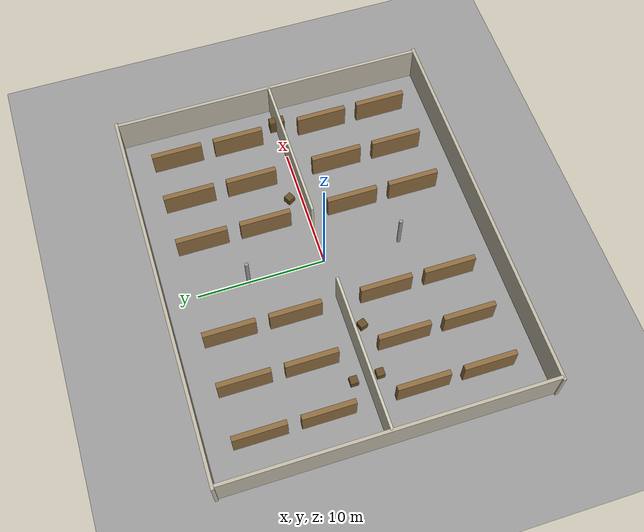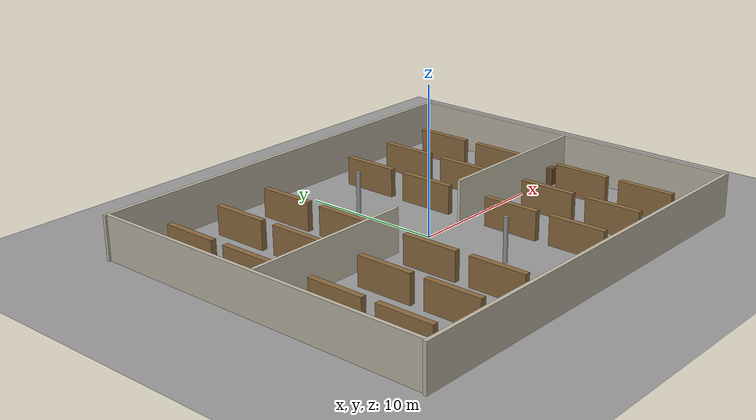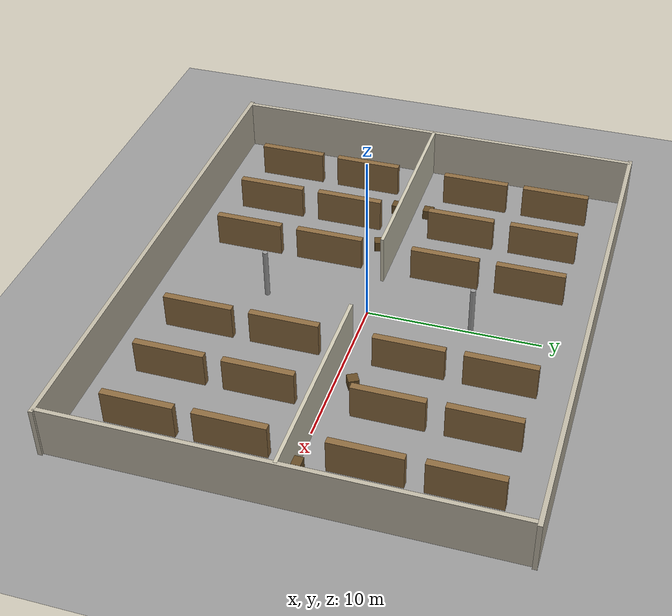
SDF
<?xml version="1.0"?>
<sdf version="1.9">
  <world name="warehouse">

    <!--  Physics & required Ignition Fortress systems           -->
    <physics name="1ms" type="ignored">
      <max_step_size>0.001</max_step_size>
      <real_time_factor>1.0</real_time_factor>
    </physics>

    <plugin filename="libignition-gazebo-physics-system.so"
            name="ignition::gazebo::systems::Physics"/>
    <plugin filename="libignition-gazebo-user-commands-system.so"
            name="ignition::gazebo::systems::UserCommands"/>
    <plugin filename="libignition-gazebo-scene-broadcaster-system.so"
            name="ignition::gazebo::systems::SceneBroadcaster"/>
    <plugin filename="libignition-gazebo-sensors-system.so"
            name="ignition::gazebo::systems::Sensors">
      <render_engine>ogre</render_engine>
    </plugin>
    <plugin filename="libignition-gazebo-imu-system.so"
            name="ignition::gazebo::systems::Imu"/>

    <!--  Lighting                                               -->
    <light name="sun" type="directional">
      <cast_shadows>true</cast_shadows>
      <pose>0 0 10 0 0 0</pose>
      <diffuse>0.9 0.9 0.9 1</diffuse>
      <specular>0.3 0.3 0.3 1</specular>
      <direction>-0.5 0.1 -0.9</direction>
    </light>

    <light name="ceiling_1" type="point">
      <pose>0 0 5 0 0 0</pose>
      <diffuse>0.7 0.7 0.7 1</diffuse>
      <specular>0.1 0.1 0.1 1</specular>
      <attenuation><range>20</range><constant>0.5</constant><linear>0.01</linear></attenuation>
    </light>
    <light name="ceiling_2" type="point">
      <pose>8 8 5 0 0 0</pose>
      <diffuse>0.7 0.7 0.7 1</diffuse>
      <specular>0.1 0.1 0.1 1</specular>
      <attenuation><range>20</range><constant>0.5</constant><linear>0.01</linear></attenuation>
    </light>
    <light name="ceiling_3" type="point">
      <pose>-8 -8 5 0 0 0</pose>
      <diffuse>0.7 0.7 0.7 1</diffuse>
      <specular>0.1 0.1 0.1 1</specular>
      <attenuation><range>20</range><constant>0.5</constant><linear>0.01</linear></attenuation>
    </light>

    <!--  Ground plane                                           -->
    <model name="ground_plane">
      <static>true</static>
      <link name="link">
        <collision name="collision">
          <geometry><plane><normal>0 0 1</normal></plane></geometry>
          <surface><friction><ode><mu>1.0</mu><mu2>1.0</mu2></ode></friction></surface>
        </collision>
        <visual name="visual">
          <geometry><plane><normal>0 0 1</normal><size>60 60</size></plane></geometry>
          <material>
            <ambient>0.6 0.6 0.6 1</ambient>
            <diffuse>0.6 0.6 0.6 1</diffuse>
          </material>
        </visual>
      </link>
    </model>

    <!--  Outer boundary walls  (30 m × 25 m, 3 m tall)         -->
    <!--  Walls are 0.25 m thick, centred on the given pose.     -->

    <!-- North wall  y = +12.5 -->
    <model name="wall_north">
      <static>true</static>
      <pose>0 12.5 1.5 0 0 0</pose>
      <link name="link">
        <collision name="c"><geometry><box><size>30.5 0.25 3</size></box></geometry></collision>
        <visual name="v">
          <geometry><box><size>30.5 0.25 3</size></box></geometry>
          <material><ambient>0.75 0.72 0.65 1</ambient><diffuse>0.75 0.72 0.65 1</diffuse></material>
        </visual>
      </link>
    </model>

    <!-- South wall  y = -12.5 -->
    <model name="wall_south">
      <static>true</static>
      <pose>0 -12.5 1.5 0 0 0</pose>
      <link name="link">
        <collision name="c"><geometry><box><size>30.5 0.25 3</size></box></geometry></collision>
        <visual name="v">
          <geometry><box><size>30.5 0.25 3</size></box></geometry>
          <material><ambient>0.75 0.72 0.65 1</ambient><diffuse>0.75 0.72 0.65 1</diffuse></material>
        </visual>
      </link>
    </model>

    <!-- East wall  x = +15 -->
    <model name="wall_east">
      <static>true</static>
      <pose>15 0 1.5 0 0 0</pose>
      <link name="link">
        <collision name="c"><geometry><box><size>0.25 25 3</size></box></geometry></collision>
        <visual name="v">
          <geometry><box><size>0.25 25 3</size></box></geometry>
          <material><ambient>0.75 0.72 0.65 1</ambient><diffuse>0.75 0.72 0.65 1</diffuse></material>
        </visual>
      </link>
    </model>

    <!-- West wall  x = -15 -->
    <model name="wall_west">
      <static>true</static>
      <pose>-15 0 1.5 0 0 0</pose>
      <link name="link">
        <collision name="c"><geometry><box><size>0.25 25 3</size></box></geometry></collision>
        <visual name="v">
          <geometry><box><size>0.25 25 3</size></box></geometry>
          <material><ambient>0.75 0.72 0.65 1</ambient><diffuse>0.75 0.72 0.65 1</diffuse></material>
        </visual>
      </link>
    </model>

    <!--  Interior dividing wall with doorway                    -->
    <!-- Left segment: x from -15 to -3 -->
    <model name="divider_left">
      <static>true</static>
      <pose>-9 0 1.5 0 0 0</pose>
      <link name="link">
        <collision name="c"><geometry><box><size>12 0.2 3</size></box></geometry></collision>
        <visual name="v">
          <geometry><box><size>12 0.2 3</size></box></geometry>
          <material><ambient>0.8 0.78 0.7 1</ambient><diffuse>0.8 0.78 0.7 1</diffuse></material>
        </visual>
      </link>
    </model>
    <!-- Right segment: x from +3 to +15 -->
    <model name="divider_right">
      <static>true</static>
      <pose>9 0 1.5 0 0 0</pose>
      <link name="link">
        <collision name="c"><geometry><box><size>12 0.2 3</size></box></geometry></collision>
        <visual name="v">
          <geometry><box><size>12 0.2 3</size></box></geometry>
          <material><ambient>0.8 0.78 0.7 1</ambient><diffuse>0.8 0.78 0.7 1</diffuse></material>
        </visual>
      </link>
    </model>

    <!--  Shelf rows — north section                             -->
    <!--  Each shelf unit: 0.4 m wide × 4 m long × 2 m tall     -->
    <!--  6 units per row, 0.5 m gaps between units             -->

    <!-- Row A  (x = -12,  y = 3..11, north half) -->
    <model name="shelf_A1"><static>true</static><pose>-12 3.5 1 0 0 0</pose>
      <link name="l"><collision name="c"><geometry><box><size>0.4 4 2</size></box></geometry></collision>
      <visual name="v"><geometry><box><size>0.4 4 2</size></box></geometry>
      <material><ambient>0.55 0.42 0.25 1</ambient><diffuse>0.55 0.42 0.25 1</diffuse></material></visual></link></model>

    <model name="shelf_A2"><static>true</static><pose>-12 8.5 1 0 0 0</pose>
      <link name="l"><collision name="c"><geometry><box><size>0.4 4 2</size></box></geometry></collision>
      <visual name="v"><geometry><box><size>0.4 4 2</size></box></geometry>
      <material><ambient>0.55 0.42 0.25 1</ambient><diffuse>0.55 0.42 0.25 1</diffuse></material></visual></link></model>

    <!-- Row B  (x = -8) -->
    <model name="shelf_B1"><static>true</static><pose>-8 3.5 1 0 0 0</pose>
      <link name="l"><collision name="c"><geometry><box><size>0.4 4 2</size></box></geometry></collision>
      <visual name="v"><geometry><box><size>0.4 4 2</size></box></geometry>
      <material><ambient>0.55 0.42 0.25 1</ambient><diffuse>0.55 0.42 0.25 1</diffuse></material></visual></link></model>

    <model name="shelf_B2"><static>true</static><pose>-8 8.5 1 0 0 0</pose>
      <link name="l"><collision name="c"><geometry><box><size>0.4 4 2</size></box></geometry></collision>
      <visual name="v"><geometry><box><size>0.4 4 2</size></box></geometry>
      <material><ambient>0.55 0.42 0.25 1</ambient><diffuse>0.55 0.42 0.25 1</diffuse></material></visual></link></model>

    <!-- Row C  (x = -4) -->
    <model name="shelf_C1"><static>true</static><pose>-4 3.5 1 0 0 0</pose>
      <link name="l"><collision name="c"><geometry><box><size>0.4 4 2</size></box></geometry></collision>
      <visual name="v"><geometry><box><size>0.4 4 2</size></box></geometry>
      <material><ambient>0.55 0.42 0.25 1</ambient><diffuse>0.55 0.42 0.25 1</diffuse></material></visual></link></model>

    <model name="shelf_C2"><static>true</static><pose>-4 8.5 1 0 0 0</pose>
      <link name="l"><collision name="c"><geometry><box><size>0.4 4 2</size></box></geometry></collision>
      <visual name="v"><geometry><box><size>0.4 4 2</size></box></geometry>
      <material><ambient>0.55 0.42 0.25 1</ambient><diffuse>0.55 0.42 0.25 1</diffuse></material></visual></link></model>

    <!-- Row D  (x = 4) -->
    <model name="shelf_D1"><static>true</static><pose>4 3.5 1 0 0 0</pose>
      <link name="l"><collision name="c"><geometry><box><size>0.4 4 2</size></box></geometry></collision>
      <visual name="v"><geometry><box><size>0.4 4 2</size></box></geometry>
      <material><ambient>0.55 0.42 0.25 1</ambient><diffuse>0.55 0.42 0.25 1</diffuse></material></visual></link></model>

    <model name="shelf_D2"><static>true</static><pose>4 8.5 1 0 0 0</pose>
      <link name="l"><collision name="c"><geometry><box><size>0.4 4 2</size></box></geometry></collision>
      <visual name="v"><geometry><box><size>0.4 4 2</size></box></geometry>
      <material><ambient>0.55 0.42 0.25 1</ambient><diffuse>0.55 0.42 0.25 1</diffuse></material></visual></link></model>

    <!-- Row E  (x = 8) -->
    <model name="shelf_E1"><static>true</static><pose>8 3.5 1 0 0 0</pose>
      <link name="l"><collision name="c"><geometry><box><size>0.4 4 2</size></box></geometry></collision>
      <visual name="v"><geometry><box><size>0.4 4 2</size></box></geometry>
      <material><ambient>0.55 0.42 0.25 1</ambient><diffuse>0.55 0.42 0.25 1</diffuse></material></visual></link></model>

    <model name="shelf_E2"><static>true</static><pose>8 8.5 1 0 0 0</pose>
      <link name="l"><collision name="c"><geometry><box><size>0.4 4 2</size></box></geometry></collision>
      <visual name="v"><geometry><box><size>0.4 4 2</size></box></geometry>
      <material><ambient>0.55 0.42 0.25 1</ambient><diffuse>0.55 0.42 0.25 1</diffuse></material></visual></link></model>

    <!-- Row F  (x = 12) -->
    <model name="shelf_F1"><static>true</static><pose>12 3.5 1 0 0 0</pose>
      <link name="l"><collision name="c"><geometry><box><size>0.4 4 2</size></box></geometry></collision>
      <visual name="v"><geometry><box><size>0.4 4 2</size></box></geometry>
      <material><ambient>0.55 0.42 0.25 1</ambient><diffuse>0.55 0.42 0.25 1</diffuse></material></visual></link></model>

    <model name="shelf_F2"><static>true</static><pose>12 8.5 1 0 0 0</pose>
      <link name="l"><collision name="c"><geometry><box><size>0.4 4 2</size></box></geometry></collision>
      <visual name="v"><geometry><box><size>0.4 4 2</size></box></geometry>
      <material><ambient>0.55 0.42 0.25 1</ambient><diffuse>0.55 0.42 0.25 1</diffuse></material></visual></link></model>

    <!--  Shelf rows — south section (mirror of north)           -->

    <model name="shelf_A3"><static>true</static><pose>-12 -3.5 1 0 0 0</pose>
      <link name="l"><collision name="c"><geometry><box><size>0.4 4 2</size></box></geometry></collision>
      <visual name="v"><geometry><box><size>0.4 4 2</size></box></geometry>
      <material><ambient>0.55 0.42 0.25 1</ambient><diffuse>0.55 0.42 0.25 1</diffuse></material></visual></link></model>

    <model name="shelf_A4"><static>true</static><pose>-12 -8.5 1 0 0 0</pose>
      <link name="l"><collision name="c"><geometry><box><size>0.4 4 2</size></box></geometry></collision>
      <visual name="v"><geometry><box><size>0.4 4 2</size></box></geometry>
      <material><ambient>0.55 0.42 0.25 1</ambient><diffuse>0.55 0.42 0.25 1</diffuse></material></visual></link></model>

    <model name="shelf_B3"><static>true</static><pose>-8 -3.5 1 0 0 0</pose>
      <link name="l"><collision name="c"><geometry><box><size>0.4 4 2</size></box></geometry></collision>
      <visual name="v"><geometry><box><size>0.4 4 2</size></box></geometry>
      <material><ambient>0.55 0.42 0.25 1</ambient><diffuse>0.55 0.42 0.25 1</diffuse></material></visual></link></model>

    <model name="shelf_B4"><static>true</static><pose>-8 -8.5 1 0 0 0</pose>
      <link name="l"><collision name="c"><geometry><box><size>0.4 4 2</size></box></geometry></collision>
      <visual name="v"><geometry><box><size>0.4 4 2</size></box></geometry>
      <material><ambient>0.55 0.42 0.25 1</ambient><diffuse>0.55 0.42 0.25 1</diffuse></material></visual></link></model>

    <model name="shelf_C3"><static>true</static><pose>-4 -3.5 1 0 0 0</pose>
      <link name="l"><collision name="c"><geometry><box><size>0.4 4 2</size></box></geometry></collision>
      <visual name="v"><geometry><box><size>0.4 4 2</size></box></geometry>
      <material><ambient>0.55 0.42 0.25 1</ambient><diffuse>0.55 0.42 0.25 1</diffuse></material></visual></link></model>

    <model name="shelf_C4"><static>true</static><pose>-4 -8.5 1 0 0 0</pose>
      <link name="l"><collision name="c"><geometry><box><size>0.4 4 2</size></box></geometry></collision>
      <visual name="v"><geometry><box><size>0.4 4 2</size></box></geometry>
      <material><ambient>0.55 0.42 0.25 1</ambient><diffuse>0.55 0.42 0.25 1</diffuse></material></visual></link></model>

    <model name="shelf_D3"><static>true</static><pose>4 -3.5 1 0 0 0</pose>
      <link name="l"><collision name="c"><geometry><box><size>0.4 4 2</size></box></geometry></collision>
      <visual name="v"><geometry><box><size>0.4 4 2</size></box></geometry>
      <material><ambient>0.55 0.42 0.25 1</ambient><diffuse>0.55 0.42 0.25 1</diffuse></material></visual></link></model>

    <model name="shelf_D4"><static>true</static><pose>4 -8.5 1 0 0 0</pose>
      <link name="l"><collision name="c"><geometry><box><size>0.4 4 2</size></box></geometry></collision>
      <visual name="v"><geometry><box><size>0.4 4 2</size></box></geometry>
      <material><ambient>0.55 0.42 0.25 1</ambient><diffuse>0.55 0.42 0.25 1</diffuse></material></visual></link></model>

    <model name="shelf_E3"><static>true</static><pose>8 -3.5 1 0 0 0</pose>
      <link name="l"><collision name="c"><geometry><box><size>0.4 4 2</size></box></geometry></collision>
      <visual name="v"><geometry><box><size>0.4 4 2</size></box></geometry>
      <material><ambient>0.55 0.42 0.25 1</ambient><diffuse>0.55 0.42 0.25 1</diffuse></material></visual></link></model>

    <model name="shelf_E4"><static>true</static><pose>8 -8.5 1 0 0 0</pose>
      <link name="l"><collision name="c"><geometry><box><size>0.4 4 2</size></box></geometry></collision>
      <visual name="v"><geometry><box><size>0.4 4 2</size></box></geometry>
      <material><ambient>0.55 0.42 0.25 1</ambient><diffuse>0.55 0.42 0.25 1</diffuse></material></visual></link></model>

    <model name="shelf_F3"><static>true</static><pose>12 -3.5 1 0 0 0</pose>
      <link name="l"><collision name="c"><geometry><box><size>0.4 4 2</size></box></geometry></collision>
      <visual name="v"><geometry><box><size>0.4 4 2</size></box></geometry>
      <material><ambient>0.55 0.42 0.25 1</ambient><diffuse>0.55 0.42 0.25 1</diffuse></material></visual></link></model>

    <model name="shelf_F4"><static>true</static><pose>12 -8.5 1 0 0 0</pose>
      <link name="l"><collision name="c"><geometry><box><size>0.4 4 2</size></box></geometry></collision>
      <visual name="v"><geometry><box><size>0.4 4 2</size></box></geometry>
      <material><ambient>0.55 0.42 0.25 1</ambient><diffuse>0.55 0.42 0.25 1</diffuse></material></visual></link></model>

    <!--  Support pillars                                        -->
    <model name="pillar_1"><static>true</static><pose>0 6 1.5 0 0 0</pose>
      <link name="l">
        <collision name="c"><geometry><cylinder><radius>0.15</radius><length>3</length></cylinder></geometry></collision>
        <visual name="v"><geometry><cylinder><radius>0.15</radius><length>3</length></cylinder></geometry>
        <material><ambient>0.6 0.6 0.6 1</ambient><diffuse>0.6 0.6 0.6 1</diffuse></material></visual>
      </link>
    </model>

    <model name="pillar_2"><static>true</static><pose>0 -6 1.5 0 0 0</pose>
      <link name="l">
        <collision name="c"><geometry><cylinder><radius>0.15</radius><length>3</length></cylinder></geometry></collision>
        <visual name="v"><geometry><cylinder><radius>0.15</radius><length>3</length></cylinder></geometry>
        <material><ambient>0.6 0.6 0.6 1</ambient><diffuse>0.6 0.6 0.6 1</diffuse></material></visual>
      </link>
    </model>

    <!--  Storage crates (scattered obstacles for SLAM richness) -->
    <model name="crate_1"><static>true</static><pose>-10 1 0.3 0 0 0</pose>
      <link name="l">
        <collision name="c"><geometry><box><size>0.6 0.6 0.6</size></box></geometry></collision>
        <visual name="v"><geometry><box><size>0.6 0.6 0.6</size></box></geometry>
        <material><ambient>0.4 0.3 0.15 1</ambient><diffuse>0.4 0.3 0.15 1</diffuse></material></visual>
      </link>
    </model>

    <model name="crate_2"><static>true</static><pose>-10 -1 0.3 0 0 0</pose>
      <link name="l">
        <collision name="c"><geometry><box><size>0.6 0.6 0.6</size></box></geometry></collision>
        <visual name="v"><geometry><box><size>0.6 0.6 0.6</size></box></geometry>
        <material><ambient>0.4 0.3 0.15 1</ambient><diffuse>0.4 0.3 0.15 1</diffuse></material></visual>
      </link>
    </model>

    <model name="crate_3"><static>true</static><pose>6 1 0.3 0 0 0.5</pose>
      <link name="l">
        <collision name="c"><geometry><box><size>0.6 0.6 0.6</size></box></geometry></collision>
        <visual name="v"><geometry><box><size>0.6 0.6 0.6</size></box></geometry>
        <material><ambient>0.4 0.3 0.15 1</ambient><diffuse>0.4 0.3 0.15 1</diffuse></material></visual>
      </link>
    </model>

    <model name="crate_4"><static>true</static><pose>-6 -1 0.3 0 0 0.3</pose>
      <link name="l">
        <collision name="c"><geometry><box><size>0.6 0.6 0.6</size></box></geometry></collision>
        <visual name="v"><geometry><box><size>0.6 0.6 0.6</size></box></geometry>
        <material><ambient>0.4 0.3 0.15 1</ambient><diffuse>0.4 0.3 0.15 1</diffuse></material></visual>
      </link>
    </model>

    <model name="crate_stack"><static>true</static><pose>13 0 0.6 0 0 0</pose>
      <link name="l">
        <collision name="c"><geometry><box><size>0.6 1.2 1.2</size></box></geometry></collision>
        <visual name="v"><geometry><box><size>0.6 1.2 1.2</size></box></geometry>
        <material><ambient>0.4 0.3 0.15 1</ambient><diffuse>0.4 0.3 0.15 1</diffuse></material></visual>
      </link>
    </model>

  </world>
</sdf>
